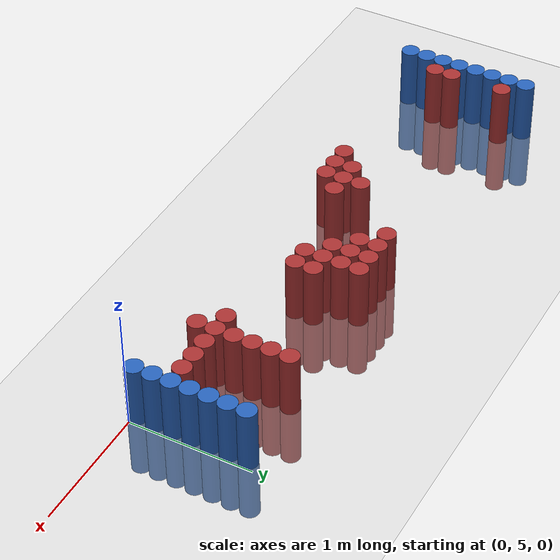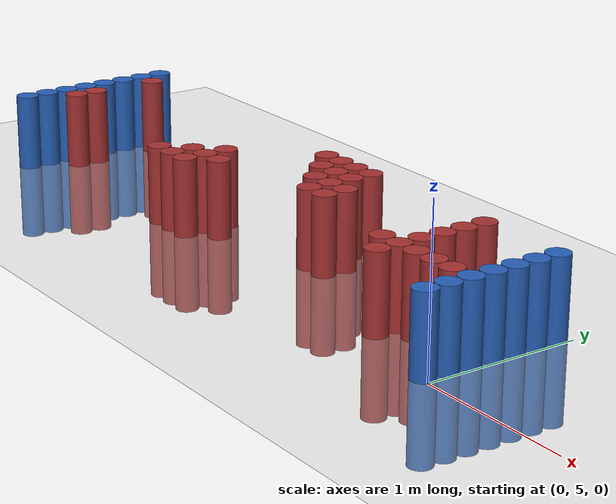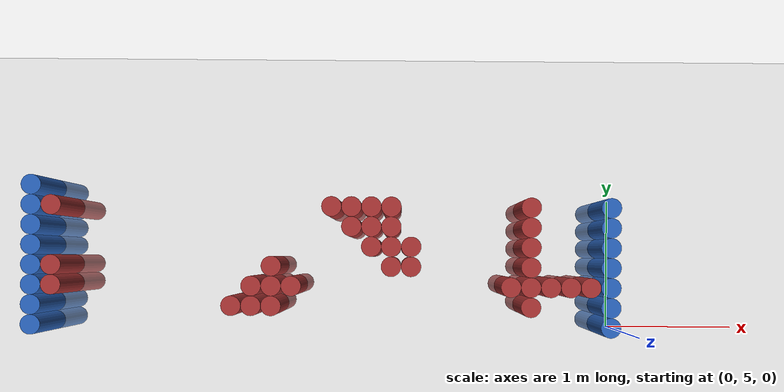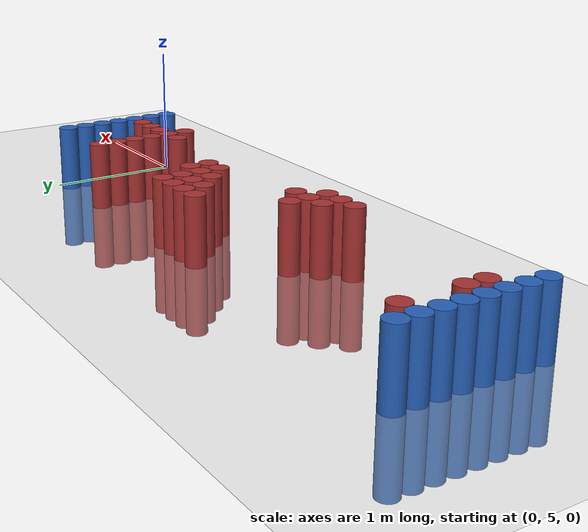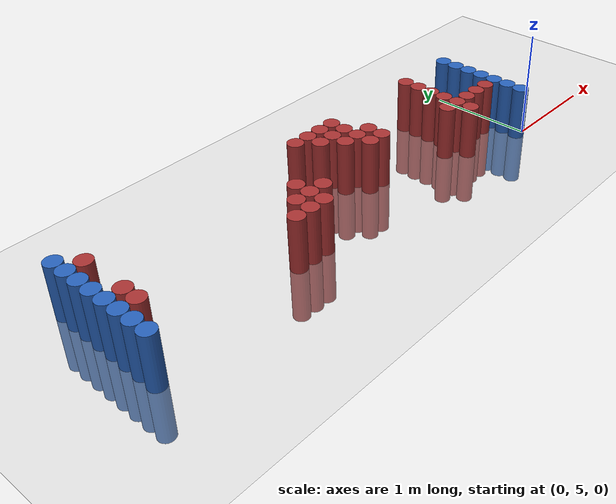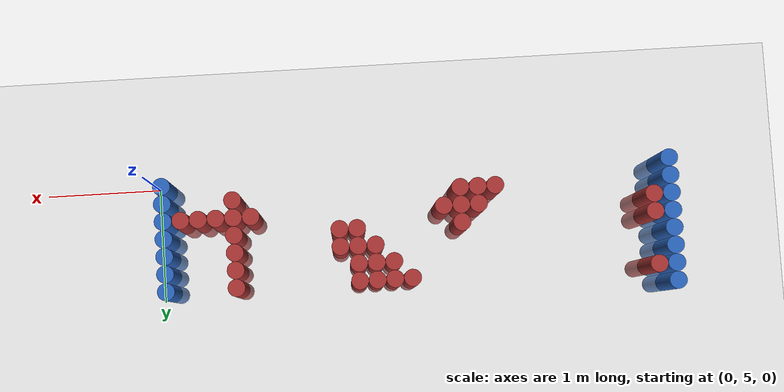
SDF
<sdf version="1.6">
 <world name="world_254">
  <model name="ground_plane">
   <static>1</static>
   <link name="link">
    <collision name="collision">
     <geometry><plane><normal>0 0 1</normal><size>100 100</size></plane></geometry>
     <surface><friction><ode><mu>100</mu><mu2>50</mu2></ode></friction></surface>
    </collision>
    <visual name="visual">
     <cast_shadows>0</cast_shadows>
     <geometry><plane><normal>0 0 1</normal><size>100 100</size></plane></geometry>
     <material>
      <script><uri>file://media/materials/scripts/gazebo.material</uri><name>Gazebo/Grey</name></script>
     </material>
    </visual>
   </link>
  </model>
  <model name="unit_cylinder_94">
   <static>1</static>
   <pose>-0.075000 5.025000 0.000000 0.000000 0.000000 0.000000</pose>
   <link name="link">
    <inertial>
     <mass>1</mass>
     <inertia><ixx>0.145833</ixx><ixy>0</ixy><ixz>0</ixz><iyy>0.145833</iyy><iyz>0</iyz><izz>0.125</izz></inertia>
    </inertial>
    <collision name="collision">
     <geometry><cylinder><radius>0.075000</radius><length>1</length></cylinder></geometry>
    </collision>
    <visual name="visual">
     <geometry><cylinder><radius>0.075000</radius><length>1</length></cylinder></geometry>
     <material>
      <ambient>0.152000 0.379000 0.720000 1</ambient>
      <diffuse>0.152000 0.379000 0.720000 1</diffuse>
     </material>
     <material>
      <script><name>Gazebo/Grey</name><uri>file://media/materials/scripts/gazebo.material</uri></script>
     </material>
    </visual>
   </link>
  </model>
  <model name="unit_cylinder_95">
   <static>1</static>
   <pose>-4.425000 5.025000 0.000000 0.000000 0.000000 0.000000</pose>
   <link name="link">
    <inertial>
     <mass>1</mass>
     <inertia><ixx>0.145833</ixx><ixy>0</ixy><ixz>0</ixz><iyy>0.145833</iyy><iyz>0</iyz><izz>0.125</izz></inertia>
    </inertial>
    <collision name="collision">
     <geometry><cylinder><radius>0.075000</radius><length>1</length></cylinder></geometry>
    </collision>
    <visual name="visual">
     <geometry><cylinder><radius>0.075000</radius><length>1</length></cylinder></geometry>
     <material>
      <ambient>0.152000 0.379000 0.720000 1</ambient>
      <diffuse>0.152000 0.379000 0.720000 1</diffuse>
     </material>
     <material>
      <script><name>Gazebo/Grey</name><uri>file://media/materials/scripts/gazebo.material</uri></script>
     </material>
    </visual>
   </link>
  </model>
  <model name="unit_cylinder_96">
   <static>1</static>
   <pose>-4.425000 5.175000 0.000000 0.000000 0.000000 0.000000</pose>
   <link name="link">
    <inertial>
     <mass>1</mass>
     <inertia><ixx>0.145833</ixx><ixy>0</ixy><ixz>0</ixz><iyy>0.145833</iyy><iyz>0</iyz><izz>0.125</izz></inertia>
    </inertial>
    <collision name="collision">
     <geometry><cylinder><radius>0.075000</radius><length>1</length></cylinder></geometry>
    </collision>
    <visual name="visual">
     <geometry><cylinder><radius>0.075000</radius><length>1</length></cylinder></geometry>
     <material>
      <ambient>0.152000 0.379000 0.720000 1</ambient>
      <diffuse>0.152000 0.379000 0.720000 1</diffuse>
     </material>
     <material>
      <script><name>Gazebo/Grey</name><uri>file://media/materials/scripts/gazebo.material</uri></script>
     </material>
    </visual>
   </link>
  </model>
  <model name="unit_cylinder_97">
   <static>1</static>
   <pose>-4.425000 5.325000 0.000000 0.000000 0.000000 0.000000</pose>
   <link name="link">
    <inertial>
     <mass>1</mass>
     <inertia><ixx>0.145833</ixx><ixy>0</ixy><ixz>0</ixz><iyy>0.145833</iyy><iyz>0</iyz><izz>0.125</izz></inertia>
    </inertial>
    <collision name="collision">
     <geometry><cylinder><radius>0.075000</radius><length>1</length></cylinder></geometry>
    </collision>
    <visual name="visual">
     <geometry><cylinder><radius>0.075000</radius><length>1</length></cylinder></geometry>
     <material>
      <ambient>0.152000 0.379000 0.720000 1</ambient>
      <diffuse>0.152000 0.379000 0.720000 1</diffuse>
     </material>
     <material>
      <script><name>Gazebo/Grey</name><uri>file://media/materials/scripts/gazebo.material</uri></script>
     </material>
    </visual>
   </link>
  </model>
  <model name="unit_cylinder_98">
   <static>1</static>
   <pose>-4.425000 5.475000 0.000000 0.000000 0.000000 0.000000</pose>
   <link name="link">
    <inertial>
     <mass>1</mass>
     <inertia><ixx>0.145833</ixx><ixy>0</ixy><ixz>0</ixz><iyy>0.145833</iyy><iyz>0</iyz><izz>0.125</izz></inertia>
    </inertial>
    <collision name="collision">
     <geometry><cylinder><radius>0.075000</radius><length>1</length></cylinder></geometry>
    </collision>
    <visual name="visual">
     <geometry><cylinder><radius>0.075000</radius><length>1</length></cylinder></geometry>
     <material>
      <ambient>0.152000 0.379000 0.720000 1</ambient>
      <diffuse>0.152000 0.379000 0.720000 1</diffuse>
     </material>
     <material>
      <script><name>Gazebo/Grey</name><uri>file://media/materials/scripts/gazebo.material</uri></script>
     </material>
    </visual>
   </link>
  </model>
  <model name="unit_cylinder_99">
   <static>1</static>
   <pose>-4.425000 5.625000 0.000000 0.000000 0.000000 0.000000</pose>
   <link name="link">
    <inertial>
     <mass>1</mass>
     <inertia><ixx>0.145833</ixx><ixy>0</ixy><ixz>0</ixz><iyy>0.145833</iyy><iyz>0</iyz><izz>0.125</izz></inertia>
    </inertial>
    <collision name="collision">
     <geometry><cylinder><radius>0.075000</radius><length>1</length></cylinder></geometry>
    </collision>
    <visual name="visual">
     <geometry><cylinder><radius>0.075000</radius><length>1</length></cylinder></geometry>
     <material>
      <ambient>0.152000 0.379000 0.720000 1</ambient>
      <diffuse>0.152000 0.379000 0.720000 1</diffuse>
     </material>
     <material>
      <script><name>Gazebo/Grey</name><uri>file://media/materials/scripts/gazebo.material</uri></script>
     </material>
    </visual>
   </link>
  </model>
  <model name="unit_cylinder_100">
   <static>1</static>
   <pose>-4.425000 5.775000 0.000000 0.000000 0.000000 0.000000</pose>
   <link name="link">
    <inertial>
     <mass>1</mass>
     <inertia><ixx>0.145833</ixx><ixy>0</ixy><ixz>0</ixz><iyy>0.145833</iyy><iyz>0</iyz><izz>0.125</izz></inertia>
    </inertial>
    <collision name="collision">
     <geometry><cylinder><radius>0.075000</radius><length>1</length></cylinder></geometry>
    </collision>
    <visual name="visual">
     <geometry><cylinder><radius>0.075000</radius><length>1</length></cylinder></geometry>
     <material>
      <ambient>0.152000 0.379000 0.720000 1</ambient>
      <diffuse>0.152000 0.379000 0.720000 1</diffuse>
     </material>
     <material>
      <script><name>Gazebo/Grey</name><uri>file://media/materials/scripts/gazebo.material</uri></script>
     </material>
    </visual>
   </link>
  </model>
  <model name="unit_cylinder_101">
   <static>1</static>
   <pose>-4.425000 5.925000 0.000000 0.000000 0.000000 0.000000</pose>
   <link name="link">
    <inertial>
     <mass>1</mass>
     <inertia><ixx>0.145833</ixx><ixy>0</ixy><ixz>0</ixz><iyy>0.145833</iyy><iyz>0</iyz><izz>0.125</izz></inertia>
    </inertial>
    <collision name="collision">
     <geometry><cylinder><radius>0.075000</radius><length>1</length></cylinder></geometry>
    </collision>
    <visual name="visual">
     <geometry><cylinder><radius>0.075000</radius><length>1</length></cylinder></geometry>
     <material>
      <ambient>0.152000 0.379000 0.720000 1</ambient>
      <diffuse>0.152000 0.379000 0.720000 1</diffuse>
     </material>
     <material>
      <script><name>Gazebo/Grey</name><uri>file://media/materials/scripts/gazebo.material</uri></script>
     </material>
    </visual>
   </link>
  </model>
  <model name="unit_cylinder_102">
   <static>1</static>
   <pose>-4.425000 6.075000 0.000000 0.000000 0.000000 0.000000</pose>
   <link name="link">
    <inertial>
     <mass>1</mass>
     <inertia><ixx>0.145833</ixx><ixy>0</ixy><ixz>0</ixz><iyy>0.145833</iyy><iyz>0</iyz><izz>0.125</izz></inertia>
    </inertial>
    <collision name="collision">
     <geometry><cylinder><radius>0.075000</radius><length>1</length></cylinder></geometry>
    </collision>
    <visual name="visual">
     <geometry><cylinder><radius>0.075000</radius><length>1</length></cylinder></geometry>
     <material>
      <ambient>0.152000 0.379000 0.720000 1</ambient>
      <diffuse>0.152000 0.379000 0.720000 1</diffuse>
     </material>
     <material>
      <script><name>Gazebo/Grey</name><uri>file://media/materials/scripts/gazebo.material</uri></script>
     </material>
    </visual>
   </link>
  </model>
  <model name="unit_cylinder_126">
   <static>1</static>
   <pose>-4.275000 5.325000 0.000000 0.000000 0.000000 0.000000</pose>
   <link name="link">
    <inertial>
     <mass>1</mass>
     <inertia><ixx>0.145833</ixx><ixy>0</ixy><ixz>0</ixz><iyy>0.145833</iyy><iyz>0</iyz><izz>0.125</izz></inertia>
    </inertial>
    <collision name="collision">
     <geometry><cylinder><radius>0.075000</radius><length>1</length></cylinder></geometry>
    </collision>
    <visual name="visual">
     <geometry><cylinder><radius>0.075000</radius><length>1</length></cylinder></geometry>
     <material>
      <ambient>0.648000 0.192000 0.192000 1</ambient>
      <diffuse>0.648000 0.192000 0.192000 1</diffuse>
     </material>
     <material>
      <script><name>Gazebo/Grey</name><uri>file://media/materials/scripts/gazebo.material</uri></script>
     </material>
    </visual>
   </link>
  </model>
  <model name="unit_cylinder_127">
   <static>1</static>
   <pose>-4.275000 5.475000 0.000000 0.000000 0.000000 0.000000</pose>
   <link name="link">
    <inertial>
     <mass>1</mass>
     <inertia><ixx>0.145833</ixx><ixy>0</ixy><ixz>0</ixz><iyy>0.145833</iyy><iyz>0</iyz><izz>0.125</izz></inertia>
    </inertial>
    <collision name="collision">
     <geometry><cylinder><radius>0.075000</radius><length>1</length></cylinder></geometry>
    </collision>
    <visual name="visual">
     <geometry><cylinder><radius>0.075000</radius><length>1</length></cylinder></geometry>
     <material>
      <ambient>0.648000 0.192000 0.192000 1</ambient>
      <diffuse>0.648000 0.192000 0.192000 1</diffuse>
     </material>
     <material>
      <script><name>Gazebo/Grey</name><uri>file://media/materials/scripts/gazebo.material</uri></script>
     </material>
    </visual>
   </link>
  </model>
  <model name="unit_cylinder_128">
   <static>1</static>
   <pose>-4.275000 5.925000 0.000000 0.000000 0.000000 0.000000</pose>
   <link name="link">
    <inertial>
     <mass>1</mass>
     <inertia><ixx>0.145833</ixx><ixy>0</ixy><ixz>0</ixz><iyy>0.145833</iyy><iyz>0</iyz><izz>0.125</izz></inertia>
    </inertial>
    <collision name="collision">
     <geometry><cylinder><radius>0.075000</radius><length>1</length></cylinder></geometry>
    </collision>
    <visual name="visual">
     <geometry><cylinder><radius>0.075000</radius><length>1</length></cylinder></geometry>
     <material>
      <ambient>0.648000 0.192000 0.192000 1</ambient>
      <diffuse>0.648000 0.192000 0.192000 1</diffuse>
     </material>
     <material>
      <script><name>Gazebo/Grey</name><uri>file://media/materials/scripts/gazebo.material</uri></script>
     </material>
    </visual>
   </link>
  </model>
  <model name="unit_cylinder_167">
   <static>1</static>
   <pose>-2.925000 5.175000 0.000000 0.000000 0.000000 0.000000</pose>
   <link name="link">
    <inertial>
     <mass>1</mass>
     <inertia><ixx>0.145833</ixx><ixy>0</ixy><ixz>0</ixz><iyy>0.145833</iyy><iyz>0</iyz><izz>0.125</izz></inertia>
    </inertial>
    <collision name="collision">
     <geometry><cylinder><radius>0.075000</radius><length>1</length></cylinder></geometry>
    </collision>
    <visual name="visual">
     <geometry><cylinder><radius>0.075000</radius><length>1</length></cylinder></geometry>
     <material>
      <ambient>0.648000 0.192000 0.192000 1</ambient>
      <diffuse>0.648000 0.192000 0.192000 1</diffuse>
     </material>
     <material>
      <script><name>Gazebo/Grey</name><uri>file://media/materials/scripts/gazebo.material</uri></script>
     </material>
    </visual>
   </link>
  </model>
  <model name="unit_cylinder_168">
   <static>1</static>
   <pose>-2.775000 5.175000 0.000000 0.000000 0.000000 0.000000</pose>
   <link name="link">
    <inertial>
     <mass>1</mass>
     <inertia><ixx>0.145833</ixx><ixy>0</ixy><ixz>0</ixz><iyy>0.145833</iyy><iyz>0</iyz><izz>0.125</izz></inertia>
    </inertial>
    <collision name="collision">
     <geometry><cylinder><radius>0.075000</radius><length>1</length></cylinder></geometry>
    </collision>
    <visual name="visual">
     <geometry><cylinder><radius>0.075000</radius><length>1</length></cylinder></geometry>
     <material>
      <ambient>0.648000 0.192000 0.192000 1</ambient>
      <diffuse>0.648000 0.192000 0.192000 1</diffuse>
     </material>
     <material>
      <script><name>Gazebo/Grey</name><uri>file://media/materials/scripts/gazebo.material</uri></script>
     </material>
    </visual>
   </link>
  </model>
  <model name="unit_cylinder_169">
   <static>1</static>
   <pose>-2.775000 5.325000 0.000000 0.000000 0.000000 0.000000</pose>
   <link name="link">
    <inertial>
     <mass>1</mass>
     <inertia><ixx>0.145833</ixx><ixy>0</ixy><ixz>0</ixz><iyy>0.145833</iyy><iyz>0</iyz><izz>0.125</izz></inertia>
    </inertial>
    <collision name="collision">
     <geometry><cylinder><radius>0.075000</radius><length>1</length></cylinder></geometry>
    </collision>
    <visual name="visual">
     <geometry><cylinder><radius>0.075000</radius><length>1</length></cylinder></geometry>
     <material>
      <ambient>0.648000 0.192000 0.192000 1</ambient>
      <diffuse>0.648000 0.192000 0.192000 1</diffuse>
     </material>
     <material>
      <script><name>Gazebo/Grey</name><uri>file://media/materials/scripts/gazebo.material</uri></script>
     </material>
    </visual>
   </link>
  </model>
  <model name="unit_cylinder_172">
   <static>1</static>
   <pose>-2.625000 5.175000 0.000000 0.000000 0.000000 0.000000</pose>
   <link name="link">
    <inertial>
     <mass>1</mass>
     <inertia><ixx>0.145833</ixx><ixy>0</ixy><ixz>0</ixz><iyy>0.145833</iyy><iyz>0</iyz><izz>0.125</izz></inertia>
    </inertial>
    <collision name="collision">
     <geometry><cylinder><radius>0.075000</radius><length>1</length></cylinder></geometry>
    </collision>
    <visual name="visual">
     <geometry><cylinder><radius>0.075000</radius><length>1</length></cylinder></geometry>
     <material>
      <ambient>0.648000 0.192000 0.192000 1</ambient>
      <diffuse>0.648000 0.192000 0.192000 1</diffuse>
     </material>
     <material>
      <script><name>Gazebo/Grey</name><uri>file://media/materials/scripts/gazebo.material</uri></script>
     </material>
    </visual>
   </link>
  </model>
  <model name="unit_cylinder_173">
   <static>1</static>
   <pose>-2.625000 5.325000 0.000000 0.000000 0.000000 0.000000</pose>
   <link name="link">
    <inertial>
     <mass>1</mass>
     <inertia><ixx>0.145833</ixx><ixy>0</ixy><ixz>0</ixz><iyy>0.145833</iyy><iyz>0</iyz><izz>0.125</izz></inertia>
    </inertial>
    <collision name="collision">
     <geometry><cylinder><radius>0.075000</radius><length>1</length></cylinder></geometry>
    </collision>
    <visual name="visual">
     <geometry><cylinder><radius>0.075000</radius><length>1</length></cylinder></geometry>
     <material>
      <ambient>0.648000 0.192000 0.192000 1</ambient>
      <diffuse>0.648000 0.192000 0.192000 1</diffuse>
     </material>
     <material>
      <script><name>Gazebo/Grey</name><uri>file://media/materials/scripts/gazebo.material</uri></script>
     </material>
    </visual>
   </link>
  </model>
  <model name="unit_cylinder_174">
   <static>1</static>
   <pose>-2.625000 5.475000 0.000000 0.000000 0.000000 0.000000</pose>
   <link name="link">
    <inertial>
     <mass>1</mass>
     <inertia><ixx>0.145833</ixx><ixy>0</ixy><ixz>0</ixz><iyy>0.145833</iyy><iyz>0</iyz><izz>0.125</izz></inertia>
    </inertial>
    <collision name="collision">
     <geometry><cylinder><radius>0.075000</radius><length>1</length></cylinder></geometry>
    </collision>
    <visual name="visual">
     <geometry><cylinder><radius>0.075000</radius><length>1</length></cylinder></geometry>
     <material>
      <ambient>0.648000 0.192000 0.192000 1</ambient>
      <diffuse>0.648000 0.192000 0.192000 1</diffuse>
     </material>
     <material>
      <script><name>Gazebo/Grey</name><uri>file://media/materials/scripts/gazebo.material</uri></script>
     </material>
    </visual>
   </link>
  </model>
  <model name="unit_cylinder_178">
   <static>1</static>
   <pose>-2.475000 5.325000 0.000000 0.000000 0.000000 0.000000</pose>
   <link name="link">
    <inertial>
     <mass>1</mass>
     <inertia><ixx>0.145833</ixx><ixy>0</ixy><ixz>0</ixz><iyy>0.145833</iyy><iyz>0</iyz><izz>0.125</izz></inertia>
    </inertial>
    <collision name="collision">
     <geometry><cylinder><radius>0.075000</radius><length>1</length></cylinder></geometry>
    </collision>
    <visual name="visual">
     <geometry><cylinder><radius>0.075000</radius><length>1</length></cylinder></geometry>
     <material>
      <ambient>0.648000 0.192000 0.192000 1</ambient>
      <diffuse>0.648000 0.192000 0.192000 1</diffuse>
     </material>
     <material>
      <script><name>Gazebo/Grey</name><uri>file://media/materials/scripts/gazebo.material</uri></script>
     </material>
    </visual>
   </link>
  </model>
  <model name="unit_cylinder_180">
   <static>1</static>
   <pose>-2.175000 5.925000 0.000000 0.000000 0.000000 0.000000</pose>
   <link name="link">
    <inertial>
     <mass>1</mass>
     <inertia><ixx>0.145833</ixx><ixy>0</ixy><ixz>0</ixz><iyy>0.145833</iyy><iyz>0</iyz><izz>0.125</izz></inertia>
    </inertial>
    <collision name="collision">
     <geometry><cylinder><radius>0.075000</radius><length>1</length></cylinder></geometry>
    </collision>
    <visual name="visual">
     <geometry><cylinder><radius>0.075000</radius><length>1</length></cylinder></geometry>
     <material>
      <ambient>0.648000 0.192000 0.192000 1</ambient>
      <diffuse>0.648000 0.192000 0.192000 1</diffuse>
     </material>
     <material>
      <script><name>Gazebo/Grey</name><uri>file://media/materials/scripts/gazebo.material</uri></script>
     </material>
    </visual>
   </link>
  </model>
  <model name="unit_cylinder_183">
   <static>1</static>
   <pose>-2.025000 5.775000 0.000000 0.000000 0.000000 0.000000</pose>
   <link name="link">
    <inertial>
     <mass>1</mass>
     <inertia><ixx>0.145833</ixx><ixy>0</ixy><ixz>0</ixz><iyy>0.145833</iyy><iyz>0</iyz><izz>0.125</izz></inertia>
    </inertial>
    <collision name="collision">
     <geometry><cylinder><radius>0.075000</radius><length>1</length></cylinder></geometry>
    </collision>
    <visual name="visual">
     <geometry><cylinder><radius>0.075000</radius><length>1</length></cylinder></geometry>
     <material>
      <ambient>0.648000 0.192000 0.192000 1</ambient>
      <diffuse>0.648000 0.192000 0.192000 1</diffuse>
     </material>
     <material>
      <script><name>Gazebo/Grey</name><uri>file://media/materials/scripts/gazebo.material</uri></script>
     </material>
    </visual>
   </link>
  </model>
  <model name="unit_cylinder_184">
   <static>1</static>
   <pose>-2.025000 5.925000 0.000000 0.000000 0.000000 0.000000</pose>
   <link name="link">
    <inertial>
     <mass>1</mass>
     <inertia><ixx>0.145833</ixx><ixy>0</ixy><ixz>0</ixz><iyy>0.145833</iyy><iyz>0</iyz><izz>0.125</izz></inertia>
    </inertial>
    <collision name="collision">
     <geometry><cylinder><radius>0.075000</radius><length>1</length></cylinder></geometry>
    </collision>
    <visual name="visual">
     <geometry><cylinder><radius>0.075000</radius><length>1</length></cylinder></geometry>
     <material>
      <ambient>0.648000 0.192000 0.192000 1</ambient>
      <diffuse>0.648000 0.192000 0.192000 1</diffuse>
     </material>
     <material>
      <script><name>Gazebo/Grey</name><uri>file://media/materials/scripts/gazebo.material</uri></script>
     </material>
    </visual>
   </link>
  </model>
  <model name="unit_cylinder_187">
   <static>1</static>
   <pose>-1.875000 5.625000 0.000000 0.000000 0.000000 0.000000</pose>
   <link name="link">
    <inertial>
     <mass>1</mass>
     <inertia><ixx>0.145833</ixx><ixy>0</ixy><ixz>0</ixz><iyy>0.145833</iyy><iyz>0</iyz><izz>0.125</izz></inertia>
    </inertial>
    <collision name="collision">
     <geometry><cylinder><radius>0.075000</radius><length>1</length></cylinder></geometry>
    </collision>
    <visual name="visual">
     <geometry><cylinder><radius>0.075000</radius><length>1</length></cylinder></geometry>
     <material>
      <ambient>0.648000 0.192000 0.192000 1</ambient>
      <diffuse>0.648000 0.192000 0.192000 1</diffuse>
     </material>
     <material>
      <script><name>Gazebo/Grey</name><uri>file://media/materials/scripts/gazebo.material</uri></script>
     </material>
    </visual>
   </link>
  </model>
  <model name="unit_cylinder_188">
   <static>1</static>
   <pose>-1.875000 5.775000 0.000000 0.000000 0.000000 0.000000</pose>
   <link name="link">
    <inertial>
     <mass>1</mass>
     <inertia><ixx>0.145833</ixx><ixy>0</ixy><ixz>0</ixz><iyy>0.145833</iyy><iyz>0</iyz><izz>0.125</izz></inertia>
    </inertial>
    <collision name="collision">
     <geometry><cylinder><radius>0.075000</radius><length>1</length></cylinder></geometry>
    </collision>
    <visual name="visual">
     <geometry><cylinder><radius>0.075000</radius><length>1</length></cylinder></geometry>
     <material>
      <ambient>0.648000 0.192000 0.192000 1</ambient>
      <diffuse>0.648000 0.192000 0.192000 1</diffuse>
     </material>
     <material>
      <script><name>Gazebo/Grey</name><uri>file://media/materials/scripts/gazebo.material</uri></script>
     </material>
    </visual>
   </link>
  </model>
  <model name="unit_cylinder_189">
   <static>1</static>
   <pose>-1.875000 5.925000 0.000000 0.000000 0.000000 0.000000</pose>
   <link name="link">
    <inertial>
     <mass>1</mass>
     <inertia><ixx>0.145833</ixx><ixy>0</ixy><ixz>0</ixz><iyy>0.145833</iyy><iyz>0</iyz><izz>0.125</izz></inertia>
    </inertial>
    <collision name="collision">
     <geometry><cylinder><radius>0.075000</radius><length>1</length></cylinder></geometry>
    </collision>
    <visual name="visual">
     <geometry><cylinder><radius>0.075000</radius><length>1</length></cylinder></geometry>
     <material>
      <ambient>0.648000 0.192000 0.192000 1</ambient>
      <diffuse>0.648000 0.192000 0.192000 1</diffuse>
     </material>
     <material>
      <script><name>Gazebo/Grey</name><uri>file://media/materials/scripts/gazebo.material</uri></script>
     </material>
    </visual>
   </link>
  </model>
  <model name="unit_cylinder_191">
   <static>1</static>
   <pose>-1.725000 5.475000 0.000000 0.000000 0.000000 0.000000</pose>
   <link name="link">
    <inertial>
     <mass>1</mass>
     <inertia><ixx>0.145833</ixx><ixy>0</ixy><ixz>0</ixz><iyy>0.145833</iyy><iyz>0</iyz><izz>0.125</izz></inertia>
    </inertial>
    <collision name="collision">
     <geometry><cylinder><radius>0.075000</radius><length>1</length></cylinder></geometry>
    </collision>
    <visual name="visual">
     <geometry><cylinder><radius>0.075000</radius><length>1</length></cylinder></geometry>
     <material>
      <ambient>0.648000 0.192000 0.192000 1</ambient>
      <diffuse>0.648000 0.192000 0.192000 1</diffuse>
     </material>
     <material>
      <script><name>Gazebo/Grey</name><uri>file://media/materials/scripts/gazebo.material</uri></script>
     </material>
    </visual>
   </link>
  </model>
  <model name="unit_cylinder_192">
   <static>1</static>
   <pose>-1.725000 5.625000 0.000000 0.000000 0.000000 0.000000</pose>
   <link name="link">
    <inertial>
     <mass>1</mass>
     <inertia><ixx>0.145833</ixx><ixy>0</ixy><ixz>0</ixz><iyy>0.145833</iyy><iyz>0</iyz><izz>0.125</izz></inertia>
    </inertial>
    <collision name="collision">
     <geometry><cylinder><radius>0.075000</radius><length>1</length></cylinder></geometry>
    </collision>
    <visual name="visual">
     <geometry><cylinder><radius>0.075000</radius><length>1</length></cylinder></geometry>
     <material>
      <ambient>0.648000 0.192000 0.192000 1</ambient>
      <diffuse>0.648000 0.192000 0.192000 1</diffuse>
     </material>
     <material>
      <script><name>Gazebo/Grey</name><uri>file://media/materials/scripts/gazebo.material</uri></script>
     </material>
    </visual>
   </link>
  </model>
  <model name="unit_cylinder_193">
   <static>1</static>
   <pose>-1.725000 5.775000 0.000000 0.000000 0.000000 0.000000</pose>
   <link name="link">
    <inertial>
     <mass>1</mass>
     <inertia><ixx>0.145833</ixx><ixy>0</ixy><ixz>0</ixz><iyy>0.145833</iyy><iyz>0</iyz><izz>0.125</izz></inertia>
    </inertial>
    <collision name="collision">
     <geometry><cylinder><radius>0.075000</radius><length>1</length></cylinder></geometry>
    </collision>
    <visual name="visual">
     <geometry><cylinder><radius>0.075000</radius><length>1</length></cylinder></geometry>
     <material>
      <ambient>0.648000 0.192000 0.192000 1</ambient>
      <diffuse>0.648000 0.192000 0.192000 1</diffuse>
     </material>
     <material>
      <script><name>Gazebo/Grey</name><uri>file://media/materials/scripts/gazebo.material</uri></script>
     </material>
    </visual>
   </link>
  </model>
  <model name="unit_cylinder_194">
   <static>1</static>
   <pose>-1.725000 5.925000 0.000000 0.000000 0.000000 0.000000</pose>
   <link name="link">
    <inertial>
     <mass>1</mass>
     <inertia><ixx>0.145833</ixx><ixy>0</ixy><ixz>0</ixz><iyy>0.145833</iyy><iyz>0</iyz><izz>0.125</izz></inertia>
    </inertial>
    <collision name="collision">
     <geometry><cylinder><radius>0.075000</radius><length>1</length></cylinder></geometry>
    </collision>
    <visual name="visual">
     <geometry><cylinder><radius>0.075000</radius><length>1</length></cylinder></geometry>
     <material>
      <ambient>0.648000 0.192000 0.192000 1</ambient>
      <diffuse>0.648000 0.192000 0.192000 1</diffuse>
     </material>
     <material>
      <script><name>Gazebo/Grey</name><uri>file://media/materials/scripts/gazebo.material</uri></script>
     </material>
    </visual>
   </link>
  </model>
  <model name="unit_cylinder_198">
   <static>1</static>
   <pose>-1.575000 5.475000 0.000000 0.000000 0.000000 0.000000</pose>
   <link name="link">
    <inertial>
     <mass>1</mass>
     <inertia><ixx>0.145833</ixx><ixy>0</ixy><ixz>0</ixz><iyy>0.145833</iyy><iyz>0</iyz><izz>0.125</izz></inertia>
    </inertial>
    <collision name="collision">
     <geometry><cylinder><radius>0.075000</radius><length>1</length></cylinder></geometry>
    </collision>
    <visual name="visual">
     <geometry><cylinder><radius>0.075000</radius><length>1</length></cylinder></geometry>
     <material>
      <ambient>0.648000 0.192000 0.192000 1</ambient>
      <diffuse>0.648000 0.192000 0.192000 1</diffuse>
     </material>
     <material>
      <script><name>Gazebo/Grey</name><uri>file://media/materials/scripts/gazebo.material</uri></script>
     </material>
    </visual>
   </link>
  </model>
  <model name="unit_cylinder_199">
   <static>1</static>
   <pose>-1.575000 5.625000 0.000000 0.000000 0.000000 0.000000</pose>
   <link name="link">
    <inertial>
     <mass>1</mass>
     <inertia><ixx>0.145833</ixx><ixy>0</ixy><ixz>0</ixz><iyy>0.145833</iyy><iyz>0</iyz><izz>0.125</izz></inertia>
    </inertial>
    <collision name="collision">
     <geometry><cylinder><radius>0.075000</radius><length>1</length></cylinder></geometry>
    </collision>
    <visual name="visual">
     <geometry><cylinder><radius>0.075000</radius><length>1</length></cylinder></geometry>
     <material>
      <ambient>0.648000 0.192000 0.192000 1</ambient>
      <diffuse>0.648000 0.192000 0.192000 1</diffuse>
     </material>
     <material>
      <script><name>Gazebo/Grey</name><uri>file://media/materials/scripts/gazebo.material</uri></script>
     </material>
    </visual>
   </link>
  </model>
  <model name="unit_cylinder_214">
   <static>1</static>
   <pose>-0.825000 5.325000 0.000000 0.000000 0.000000 0.000000</pose>
   <link name="link">
    <inertial>
     <mass>1</mass>
     <inertia><ixx>0.145833</ixx><ixy>0</ixy><ixz>0</ixz><iyy>0.145833</iyy><iyz>0</iyz><izz>0.125</izz></inertia>
    </inertial>
    <collision name="collision">
     <geometry><cylinder><radius>0.075000</radius><length>1</length></cylinder></geometry>
    </collision>
    <visual name="visual">
     <geometry><cylinder><radius>0.075000</radius><length>1</length></cylinder></geometry>
     <material>
      <ambient>0.648000 0.192000 0.192000 1</ambient>
      <diffuse>0.648000 0.192000 0.192000 1</diffuse>
     </material>
     <material>
      <script><name>Gazebo/Grey</name><uri>file://media/materials/scripts/gazebo.material</uri></script>
     </material>
    </visual>
   </link>
  </model>
  <model name="unit_cylinder_222">
   <static>1</static>
   <pose>-0.675000 5.175000 0.000000 0.000000 0.000000 0.000000</pose>
   <link name="link">
    <inertial>
     <mass>1</mass>
     <inertia><ixx>0.145833</ixx><ixy>0</ixy><ixz>0</ixz><iyy>0.145833</iyy><iyz>0</iyz><izz>0.125</izz></inertia>
    </inertial>
    <collision name="collision">
     <geometry><cylinder><radius>0.075000</radius><length>1</length></cylinder></geometry>
    </collision>
    <visual name="visual">
     <geometry><cylinder><radius>0.075000</radius><length>1</length></cylinder></geometry>
     <material>
      <ambient>0.648000 0.192000 0.192000 1</ambient>
      <diffuse>0.648000 0.192000 0.192000 1</diffuse>
     </material>
     <material>
      <script><name>Gazebo/Grey</name><uri>file://media/materials/scripts/gazebo.material</uri></script>
     </material>
    </visual>
   </link>
  </model>
  <model name="unit_cylinder_223">
   <static>1</static>
   <pose>-0.675000 5.325000 0.000000 0.000000 0.000000 0.000000</pose>
   <link name="link">
    <inertial>
     <mass>1</mass>
     <inertia><ixx>0.145833</ixx><ixy>0</ixy><ixz>0</ixz><iyy>0.145833</iyy><iyz>0</iyz><izz>0.125</izz></inertia>
    </inertial>
    <collision name="collision">
     <geometry><cylinder><radius>0.075000</radius><length>1</length></cylinder></geometry>
    </collision>
    <visual name="visual">
     <geometry><cylinder><radius>0.075000</radius><length>1</length></cylinder></geometry>
     <material>
      <ambient>0.648000 0.192000 0.192000 1</ambient>
      <diffuse>0.648000 0.192000 0.192000 1</diffuse>
     </material>
     <material>
      <script><name>Gazebo/Grey</name><uri>file://media/materials/scripts/gazebo.material</uri></script>
     </material>
    </visual>
   </link>
  </model>
  <model name="unit_cylinder_224">
   <static>1</static>
   <pose>-0.675000 5.475000 0.000000 0.000000 0.000000 0.000000</pose>
   <link name="link">
    <inertial>
     <mass>1</mass>
     <inertia><ixx>0.145833</ixx><ixy>0</ixy><ixz>0</ixz><iyy>0.145833</iyy><iyz>0</iyz><izz>0.125</izz></inertia>
    </inertial>
    <collision name="collision">
     <geometry><cylinder><radius>0.075000</radius><length>1</length></cylinder></geometry>
    </collision>
    <visual name="visual">
     <geometry><cylinder><radius>0.075000</radius><length>1</length></cylinder></geometry>
     <material>
      <ambient>0.648000 0.192000 0.192000 1</ambient>
      <diffuse>0.648000 0.192000 0.192000 1</diffuse>
     </material>
     <material>
      <script><name>Gazebo/Grey</name><uri>file://media/materials/scripts/gazebo.material</uri></script>
     </material>
    </visual>
   </link>
  </model>
  <model name="unit_cylinder_225">
   <static>1</static>
   <pose>-0.675000 5.625000 0.000000 0.000000 0.000000 0.000000</pose>
   <link name="link">
    <inertial>
     <mass>1</mass>
     <inertia><ixx>0.145833</ixx><ixy>0</ixy><ixz>0</ixz><iyy>0.145833</iyy><iyz>0</iyz><izz>0.125</izz></inertia>
    </inertial>
    <collision name="collision">
     <geometry><cylinder><radius>0.075000</radius><length>1</length></cylinder></geometry>
    </collision>
    <visual name="visual">
     <geometry><cylinder><radius>0.075000</radius><length>1</length></cylinder></geometry>
     <material>
      <ambient>0.648000 0.192000 0.192000 1</ambient>
      <diffuse>0.648000 0.192000 0.192000 1</diffuse>
     </material>
     <material>
      <script><name>Gazebo/Grey</name><uri>file://media/materials/scripts/gazebo.material</uri></script>
     </material>
    </visual>
   </link>
  </model>
  <model name="unit_cylinder_226">
   <static>1</static>
   <pose>-0.675000 5.775000 0.000000 0.000000 0.000000 0.000000</pose>
   <link name="link">
    <inertial>
     <mass>1</mass>
     <inertia><ixx>0.145833</ixx><ixy>0</ixy><ixz>0</ixz><iyy>0.145833</iyy><iyz>0</iyz><izz>0.125</izz></inertia>
    </inertial>
    <collision name="collision">
     <geometry><cylinder><radius>0.075000</radius><length>1</length></cylinder></geometry>
    </collision>
    <visual name="visual">
     <geometry><cylinder><radius>0.075000</radius><length>1</length></cylinder></geometry>
     <material>
      <ambient>0.648000 0.192000 0.192000 1</ambient>
      <diffuse>0.648000 0.192000 0.192000 1</diffuse>
     </material>
     <material>
      <script><name>Gazebo/Grey</name><uri>file://media/materials/scripts/gazebo.material</uri></script>
     </material>
    </visual>
   </link>
  </model>
  <model name="unit_cylinder_227">
   <static>1</static>
   <pose>-0.675000 5.925000 0.000000 0.000000 0.000000 0.000000</pose>
   <link name="link">
    <inertial>
     <mass>1</mass>
     <inertia><ixx>0.145833</ixx><ixy>0</ixy><ixz>0</ixz><iyy>0.145833</iyy><iyz>0</iyz><izz>0.125</izz></inertia>
    </inertial>
    <collision name="collision">
     <geometry><cylinder><radius>0.075000</radius><length>1</length></cylinder></geometry>
    </collision>
    <visual name="visual">
     <geometry><cylinder><radius>0.075000</radius><length>1</length></cylinder></geometry>
     <material>
      <ambient>0.648000 0.192000 0.192000 1</ambient>
      <diffuse>0.648000 0.192000 0.192000 1</diffuse>
     </material>
     <material>
      <script><name>Gazebo/Grey</name><uri>file://media/materials/scripts/gazebo.material</uri></script>
     </material>
    </visual>
   </link>
  </model>
  <model name="unit_cylinder_232">
   <static>1</static>
   <pose>-0.525000 5.325000 0.000000 0.000000 0.000000 0.000000</pose>
   <link name="link">
    <inertial>
     <mass>1</mass>
     <inertia><ixx>0.145833</ixx><ixy>0</ixy><ixz>0</ixz><iyy>0.145833</iyy><iyz>0</iyz><izz>0.125</izz></inertia>
    </inertial>
    <collision name="collision">
     <geometry><cylinder><radius>0.075000</radius><length>1</length></cylinder></geometry>
    </collision>
    <visual name="visual">
     <geometry><cylinder><radius>0.075000</radius><length>1</length></cylinder></geometry>
     <material>
      <ambient>0.648000 0.192000 0.192000 1</ambient>
      <diffuse>0.648000 0.192000 0.192000 1</diffuse>
     </material>
     <material>
      <script><name>Gazebo/Grey</name><uri>file://media/materials/scripts/gazebo.material</uri></script>
     </material>
    </visual>
   </link>
  </model>
  <model name="unit_cylinder_237">
   <static>1</static>
   <pose>-0.375000 5.325000 0.000000 0.000000 0.000000 0.000000</pose>
   <link name="link">
    <inertial>
     <mass>1</mass>
     <inertia><ixx>0.145833</ixx><ixy>0</ixy><ixz>0</ixz><iyy>0.145833</iyy><iyz>0</iyz><izz>0.125</izz></inertia>
    </inertial>
    <collision name="collision">
     <geometry><cylinder><radius>0.075000</radius><length>1</length></cylinder></geometry>
    </collision>
    <visual name="visual">
     <geometry><cylinder><radius>0.075000</radius><length>1</length></cylinder></geometry>
     <material>
      <ambient>0.648000 0.192000 0.192000 1</ambient>
      <diffuse>0.648000 0.192000 0.192000 1</diffuse>
     </material>
     <material>
      <script><name>Gazebo/Grey</name><uri>file://media/materials/scripts/gazebo.material</uri></script>
     </material>
    </visual>
   </link>
  </model>
  <model name="unit_cylinder_242">
   <static>1</static>
   <pose>-0.225000 5.325000 0.000000 0.000000 0.000000 0.000000</pose>
   <link name="link">
    <inertial>
     <mass>1</mass>
     <inertia><ixx>0.145833</ixx><ixy>0</ixy><ixz>0</ixz><iyy>0.145833</iyy><iyz>0</iyz><izz>0.125</izz></inertia>
    </inertial>
    <collision name="collision">
     <geometry><cylinder><radius>0.075000</radius><length>1</length></cylinder></geometry>
    </collision>
    <visual name="visual">
     <geometry><cylinder><radius>0.075000</radius><length>1</length></cylinder></geometry>
     <material>
      <ambient>0.648000 0.192000 0.192000 1</ambient>
      <diffuse>0.648000 0.192000 0.192000 1</diffuse>
     </material>
     <material>
      <script><name>Gazebo/Grey</name><uri>file://media/materials/scripts/gazebo.material</uri></script>
     </material>
    </visual>
   </link>
  </model>
  <model name="unit_cylinder_252">
   <static>1</static>
   <pose>-0.075000 5.175000 0.000000 0.000000 0.000000 0.000000</pose>
   <link name="link">
    <inertial>
     <mass>1</mass>
     <inertia><ixx>0.145833</ixx><ixy>0</ixy><ixz>0</ixz><iyy>0.145833</iyy><iyz>0</iyz><izz>0.125</izz></inertia>
    </inertial>
    <collision name="collision">
     <geometry><cylinder><radius>0.075000</radius><length>1</length></cylinder></geometry>
    </collision>
    <visual name="visual">
     <geometry><cylinder><radius>0.075000</radius><length>1</length></cylinder></geometry>
     <material>
      <ambient>0.152000 0.379000 0.720000 1</ambient>
      <diffuse>0.152000 0.379000 0.720000 1</diffuse>
     </material>
     <material>
      <script><name>Gazebo/Grey</name><uri>file://media/materials/scripts/gazebo.material</uri></script>
     </material>
    </visual>
   </link>
  </model>
  <model name="unit_cylinder_253">
   <static>1</static>
   <pose>-0.075000 5.325000 0.000000 0.000000 0.000000 0.000000</pose>
   <link name="link">
    <inertial>
     <mass>1</mass>
     <inertia><ixx>0.145833</ixx><ixy>0</ixy><ixz>0</ixz><iyy>0.145833</iyy><iyz>0</iyz><izz>0.125</izz></inertia>
    </inertial>
    <collision name="collision">
     <geometry><cylinder><radius>0.075000</radius><length>1</length></cylinder></geometry>
    </collision>
    <visual name="visual">
     <geometry><cylinder><radius>0.075000</radius><length>1</length></cylinder></geometry>
     <material>
      <ambient>0.152000 0.379000 0.720000 1</ambient>
      <diffuse>0.152000 0.379000 0.720000 1</diffuse>
     </material>
     <material>
      <script><name>Gazebo/Grey</name><uri>file://media/materials/scripts/gazebo.material</uri></script>
     </material>
    </visual>
   </link>
  </model>
  <model name="unit_cylinder_254">
   <static>1</static>
   <pose>-0.075000 5.475000 0.000000 0.000000 0.000000 0.000000</pose>
   <link name="link">
    <inertial>
     <mass>1</mass>
     <inertia><ixx>0.145833</ixx><ixy>0</ixy><ixz>0</ixz><iyy>0.145833</iyy><iyz>0</iyz><izz>0.125</izz></inertia>
    </inertial>
    <collision name="collision">
     <geometry><cylinder><radius>0.075000</radius><length>1</length></cylinder></geometry>
    </collision>
    <visual name="visual">
     <geometry><cylinder><radius>0.075000</radius><length>1</length></cylinder></geometry>
     <material>
      <ambient>0.152000 0.379000 0.720000 1</ambient>
      <diffuse>0.152000 0.379000 0.720000 1</diffuse>
     </material>
     <material>
      <script><name>Gazebo/Grey</name><uri>file://media/materials/scripts/gazebo.material</uri></script>
     </material>
    </visual>
   </link>
  </model>
  <model name="unit_cylinder_255">
   <static>1</static>
   <pose>-0.075000 5.625000 0.000000 0.000000 0.000000 0.000000</pose>
   <link name="link">
    <inertial>
     <mass>1</mass>
     <inertia><ixx>0.145833</ixx><ixy>0</ixy><ixz>0</ixz><iyy>0.145833</iyy><iyz>0</iyz><izz>0.125</izz></inertia>
    </inertial>
    <collision name="collision">
     <geometry><cylinder><radius>0.075000</radius><length>1</length></cylinder></geometry>
    </collision>
    <visual name="visual">
     <geometry><cylinder><radius>0.075000</radius><length>1</length></cylinder></geometry>
     <material>
      <ambient>0.152000 0.379000 0.720000 1</ambient>
      <diffuse>0.152000 0.379000 0.720000 1</diffuse>
     </material>
     <material>
      <script><name>Gazebo/Grey</name><uri>file://media/materials/scripts/gazebo.material</uri></script>
     </material>
    </visual>
   </link>
  </model>
  <model name="unit_cylinder_256">
   <static>1</static>
   <pose>-0.075000 5.775000 0.000000 0.000000 0.000000 0.000000</pose>
   <link name="link">
    <inertial>
     <mass>1</mass>
     <inertia><ixx>0.145833</ixx><ixy>0</ixy><ixz>0</ixz><iyy>0.145833</iyy><iyz>0</iyz><izz>0.125</izz></inertia>
    </inertial>
    <collision name="collision">
     <geometry><cylinder><radius>0.075000</radius><length>1</length></cylinder></geometry>
    </collision>
    <visual name="visual">
     <geometry><cylinder><radius>0.075000</radius><length>1</length></cylinder></geometry>
     <material>
      <ambient>0.152000 0.379000 0.720000 1</ambient>
      <diffuse>0.152000 0.379000 0.720000 1</diffuse>
     </material>
     <material>
      <script><name>Gazebo/Grey</name><uri>file://media/materials/scripts/gazebo.material</uri></script>
     </material>
    </visual>
   </link>
  </model>
  <model name="unit_cylinder_257">
   <static>1</static>
   <pose>-0.075000 5.925000 0.000000 0.000000 0.000000 0.000000</pose>
   <link name="link">
    <inertial>
     <mass>1</mass>
     <inertia><ixx>0.145833</ixx><ixy>0</ixy><ixz>0</ixz><iyy>0.145833</iyy><iyz>0</iyz><izz>0.125</izz></inertia>
    </inertial>
    <collision name="collision">
     <geometry><cylinder><radius>0.075000</radius><length>1</length></cylinder></geometry>
    </collision>
    <visual name="visual">
     <geometry><cylinder><radius>0.075000</radius><length>1</length></cylinder></geometry>
     <material>
      <ambient>0.152000 0.379000 0.720000 1</ambient>
      <diffuse>0.152000 0.379000 0.720000 1</diffuse>
     </material>
     <material>
      <script><name>Gazebo/Grey</name><uri>file://media/materials/scripts/gazebo.material</uri></script>
     </material>
    </visual>
   </link>
  </model>
 </world>
</sdf>
